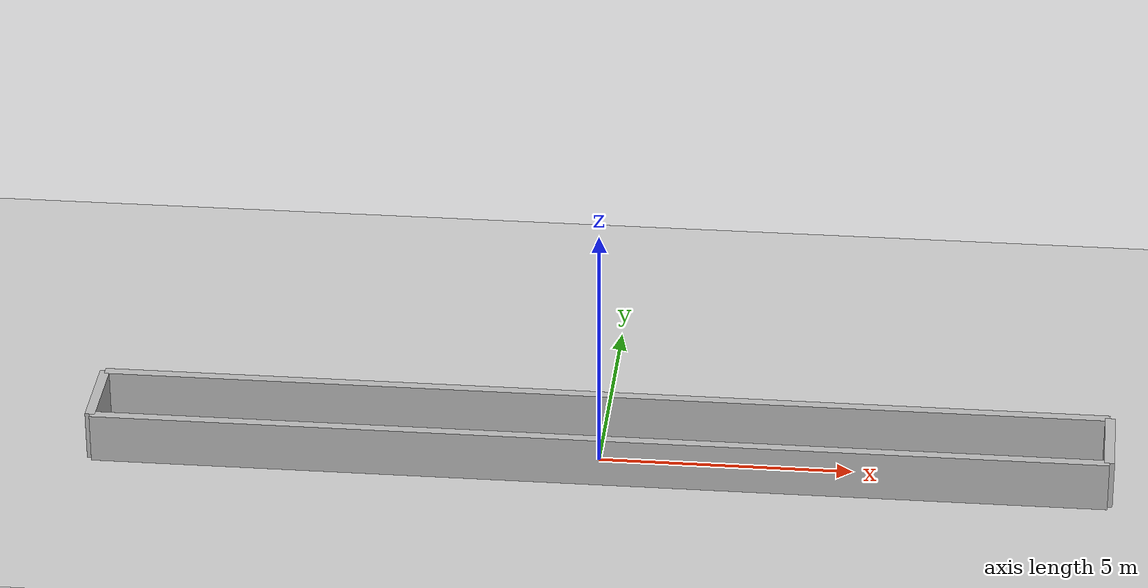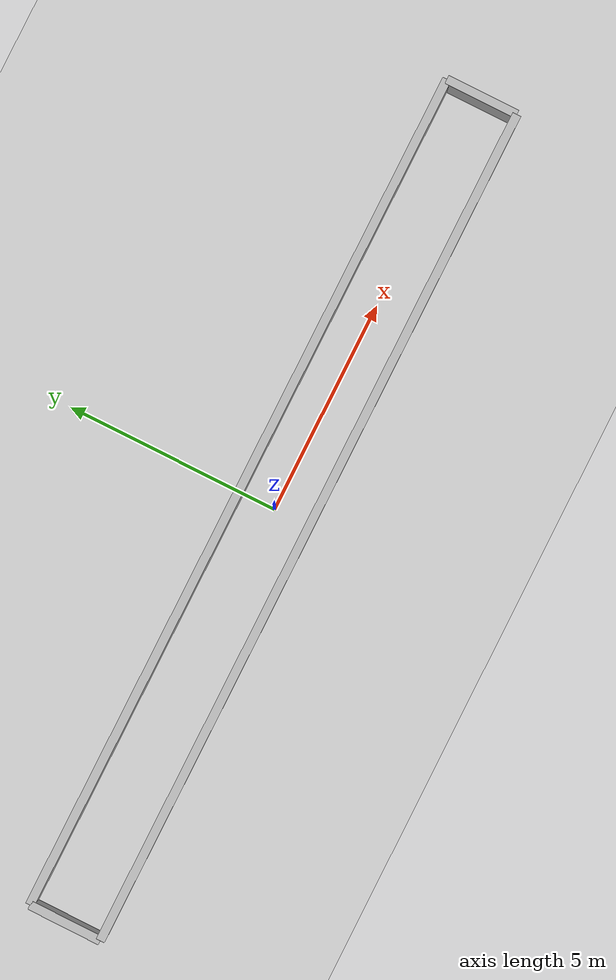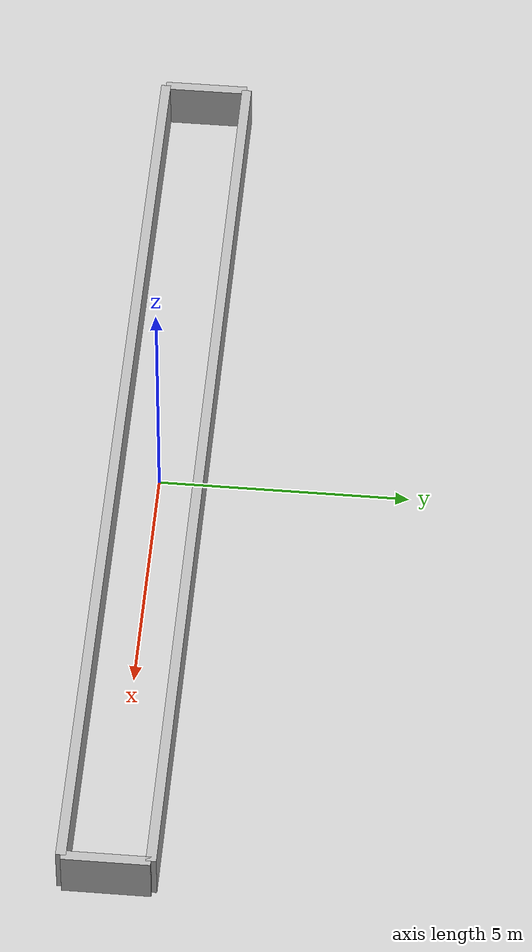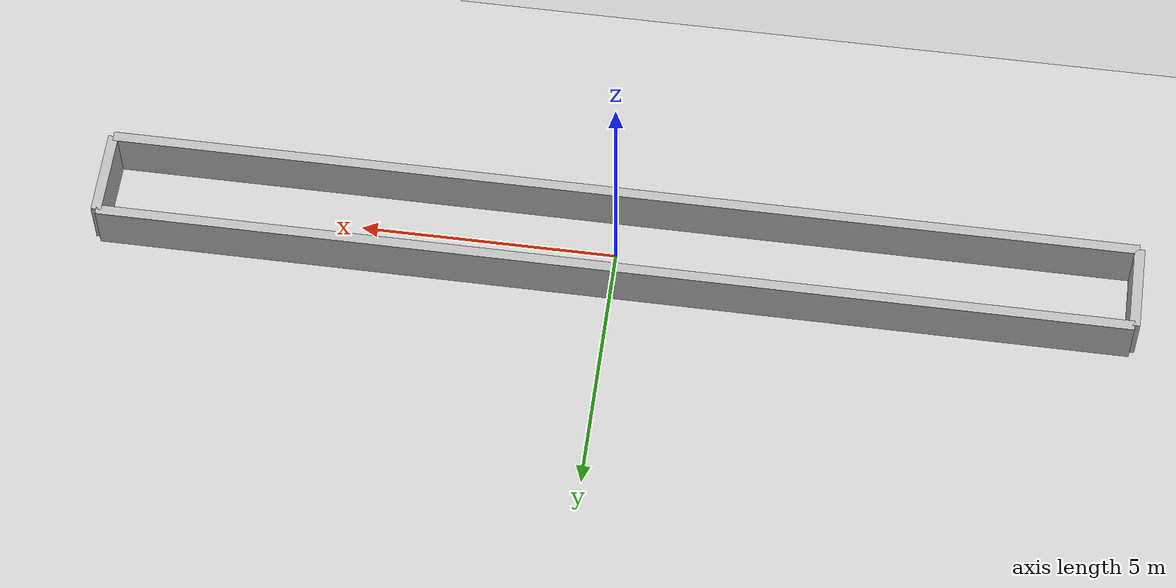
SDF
<?xml version="1.0" ?>
<sdf version="1.6">
  <world name="pista_corrida_1_7m">

    <!-- Luz -->
    <include>
      <uri>model://sun</uri>
    </include>

    <!-- Chão -->
    <include>
      <uri>model://ground_plane</uri>
    </include>

    <!-- Física -->
    <physics type="ode">
      <real_time_update_rate>1000</real_time_update_rate>
      <max_step_size>0.001</max_step_size>
    </physics>

    <!-- Parede inferior -->
    <model name="wall_bottom">
      <static>true</static>
      <link name="link">
        <pose>0 -0.85 0.5 0 0 0</pose>
        <collision name="collision">
          <geometry>
            <box>
              <size>20 0.2 1</size>
            </box>
          </geometry>
        </collision>
        <visual name="visual">
          <geometry>
            <box>
              <size>20 0.2 1</size>
            </box>
          </geometry>
        </visual>
      </link>
    </model>

    <!-- Parede superior -->
    <model name="wall_top">
      <static>true</static>
      <link name="link">
        <pose>0 0.85 0.5 0 0 0</pose>
        <collision name="collision">
          <geometry>
            <box>
              <size>20 0.2 1</size>
            </box>
          </geometry>
        </collision>
        <visual name="visual">
          <geometry>
            <box>
              <size>20 0.2 1</size>
            </box>
          </geometry>
        </visual>
      </link>
    </model>

    <!-- Parede esquerda -->
    <model name="wall_left">
      <static>true</static>
      <link name="link">
        <pose>-10 0 0.5 0 0 0</pose>
        <collision name="collision">
          <geometry>
            <box>
              <size>0.2 1.7 1</size>
            </box>
          </geometry>
        </collision>
        <visual name="visual">
          <geometry>
            <box>
              <size>0.2 1.7 1</size>
            </box>
          </geometry>
        </visual>
      </link>
    </model>

    <!-- Parede direita -->
    <model name="wall_right">
      <static>true</static>
      <link name="link">
        <pose>10 0 0.5 0 0 0</pose>
        <collision name="collision">
          <geometry>
            <box>
              <size>0.2 1.7 1</size>
            </box>
          </geometry>
        </collision>
        <visual name="visual">
          <geometry>
            <box>
              <size>0.2 1.7 1</size>
            </box>
          </geometry>
        </visual>
      </link>
    </model>

  </world>
</sdf>
